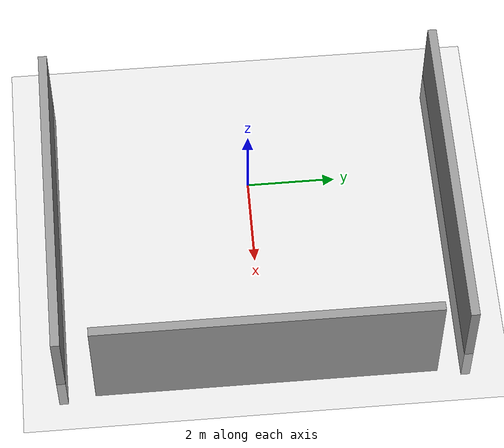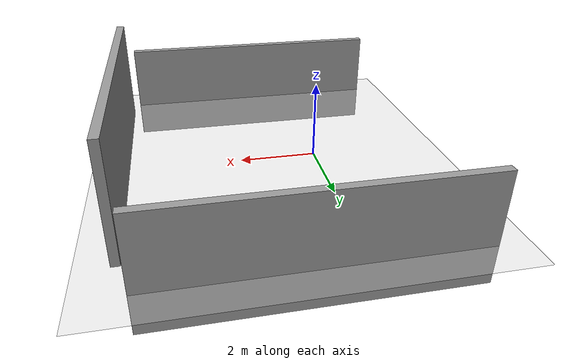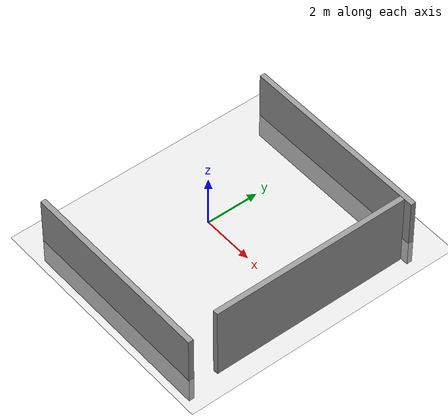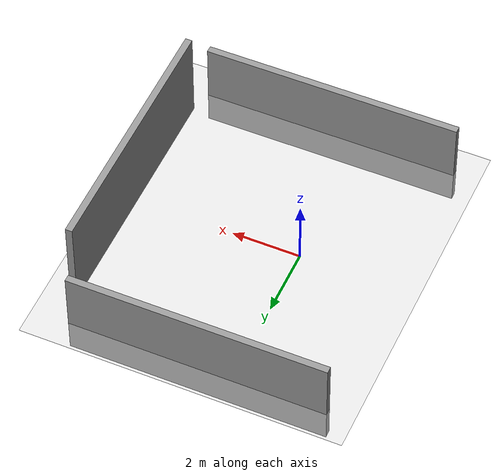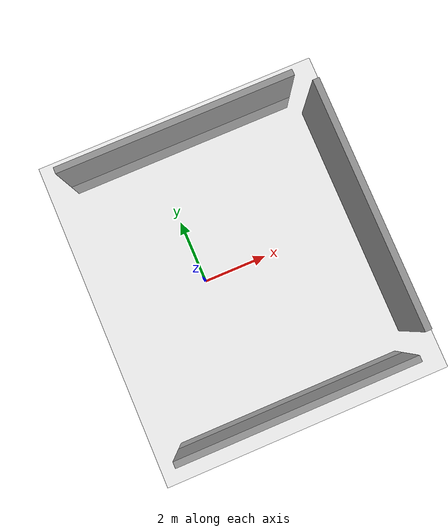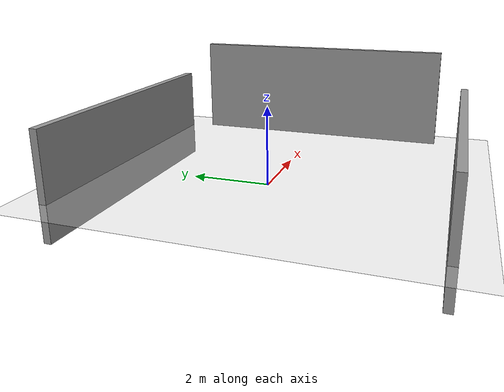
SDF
<!--custom landscape for obstacle avoidance testign-->
<?xml version="1.0" ?>
<sdf version="1.4">
  <world name="default">
    <include>
      <uri>model://ground_plane</uri>
    </include>
    <include>
      <uri>model://sun</uri>
    </include>
    <include>
      <uri>model://grey_wall</uri>
      <name>grey_wall_front1</name>
      <pose>5.0 0 0.0 0 0 1.57</pose>
    </include>
    <include>
      <uri>model://grey_wall</uri>
      <name>grey_wall_left</name>
      <pose>1.0 4.5 -1.0 0 0.0 0.0</pose>
    </include>
    <include>
      <uri>model://grey_wall</uri>
      <name>grey_wall_right</name>
      <pose>1.0 -4.5 -1.0 0 0.0 0.0</pose>
    </include>
  </world>
</sdf>
<!--grey wall rightx=6.0 y=-9.0 complex -->

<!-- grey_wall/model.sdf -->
<sdf version="1.5">
  <model name="grey_wall">
    <static>true</static>
    <link name="link">
      <pose>0 0 1.4 0 0 0</pose>
      <collision name="collision">
        <geometry>
          <box>
            <size>7.5 0.2 2.8</size>
          </box>
        </geometry>
      </collision>
      <visual name="visual">
        <cast_shadows>false</cast_shadows>
        <geometry>
          <box>
            <size>7.5 0.2 2.8</size>
          </box>
        </geometry>
        <material>
          <script>
            <uri>model://../model_source/models/grey_wall/materials/scripts</uri>
            <uri>model://../model_source/models/grey_wall/materials/textures</uri>
            <name>vrc/grey_wall</name>
          </script>
        </material>
      </visual>
    </link>
  </model>
</sdf>
